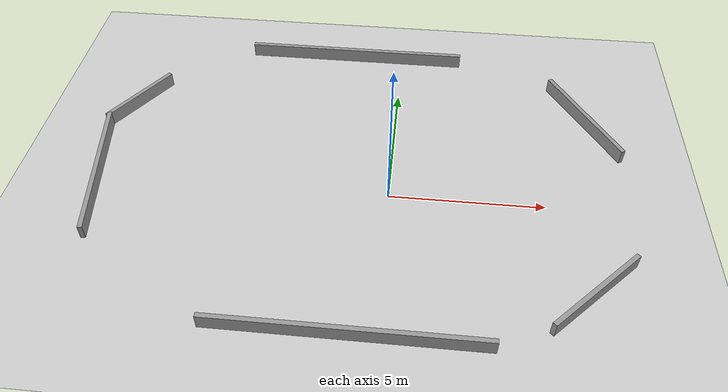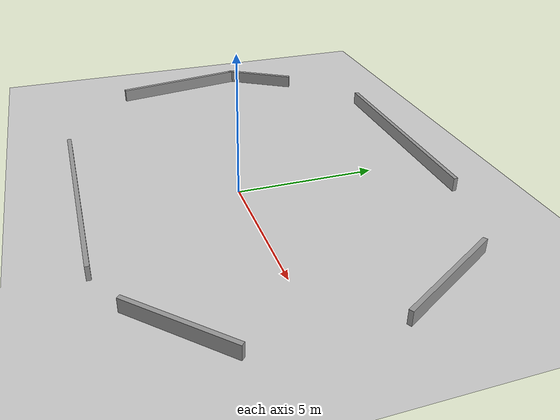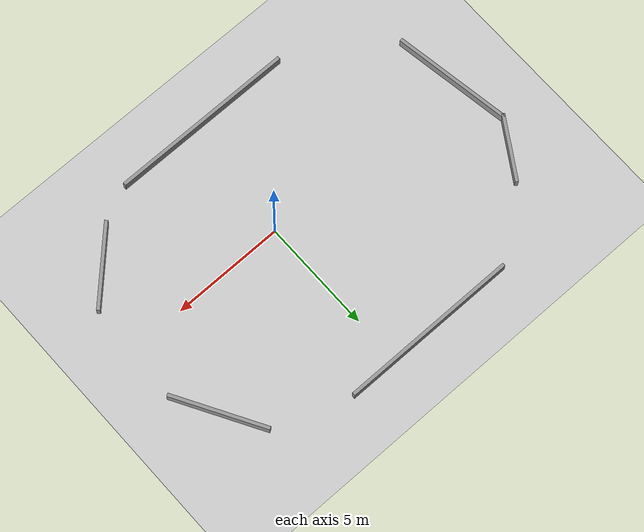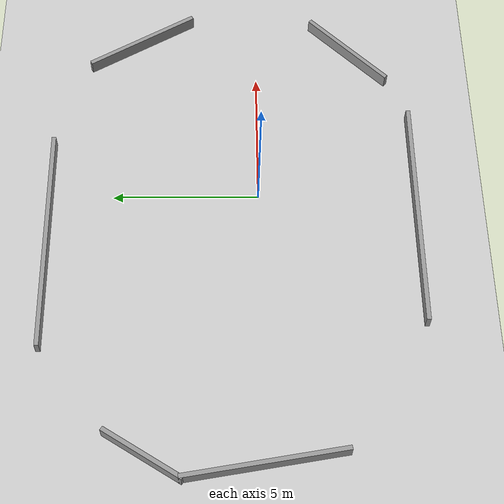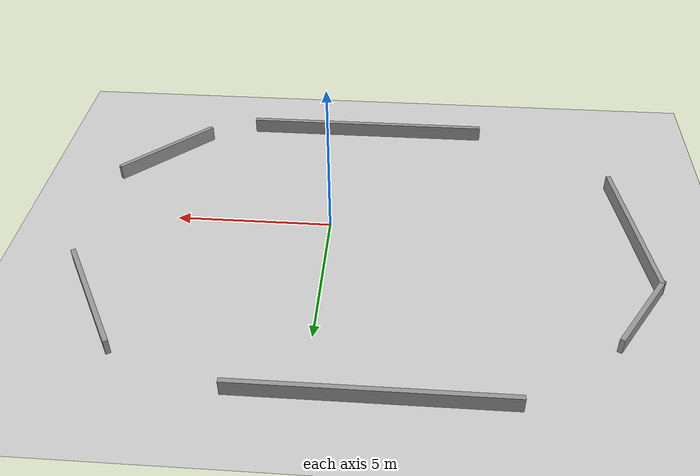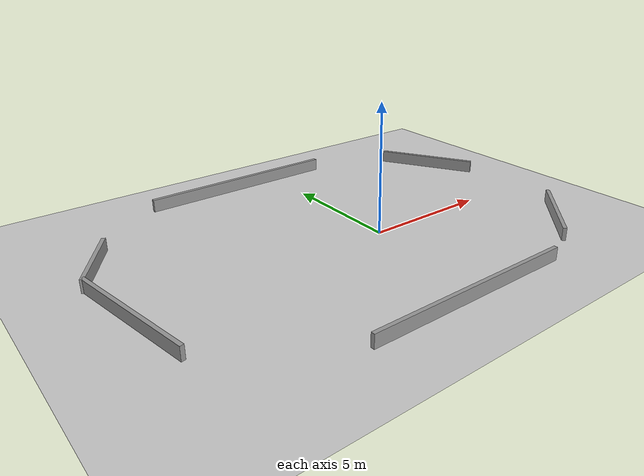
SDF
<sdf version="1.6">
 <world name="default">
  <light name="sun" type="directional">
   <pose>0 0 10 0 -0 0</pose>
   <diffuse>0.8 0.8 0.8 1</diffuse>
   <specular>0.2 0.2 0.2 1</specular>
   <attenuation>
    <range>1000</range>
    <constant>0.9</constant>
    <linear>0.01</linear>
    <quadratic>0.001</quadratic>
   </attenuation>
   <direction>-0.5 0.1 -0.9</direction>
  </light>
  <model name="ground_plane">
   <static>1</static>
   <link name="link">
    <collision name="collision">
     <geometry><plane><normal>0 0 1</normal><size>100 100</size></plane></geometry>
     <surface>
      <contact><collide_bitmask>65535</collide_bitmask></contact>
      <friction><ode><mu>100</mu><mu2>50</mu2></ode></friction>
     </surface>
    </collision>
    <visual name="visual">
     <cast_shadows>0</cast_shadows>
     <geometry><plane><normal>0 0 1</normal><size>100 100</size></plane></geometry>
     <material>
      <script><uri>file://media/materials/scripts/gazebo.material</uri><name>Gazebo/Grey</name></script>
     </material>
    </visual>
   </link>
  </model>
  <gravity>0 0 -9.8</gravity>
  <magnetic_field>6e-06 2.3e-05 -4.2e-05</magnetic_field>
  <atmosphere type="adiabatic"/>
  <physics name="default_physics" default="0" type="ode">
   <max_step_size>0.001</max_step_size>
   <real_time_factor>1</real_time_factor>
   <real_time_update_rate>1000</real_time_update_rate>
  </physics>
  <scene><ambient>0.4 0.4 0.4 1</ambient><background>0.7 0.7 0.7 1</background><shadows>1</shadows></scene>
  <audio><device>default</device></audio>
  <spherical_coordinates>
   <surface_model>EARTH_WGS84</surface_model>
   <latitude_deg>0</latitude_deg>
   <longitude_deg>0</longitude_deg>
   <elevation>0</elevation>
   <heading_deg>0</heading_deg>
  </spherical_coordinates>
  <model name="Untitled">
   <pose>-1.22344 0.890305 0 0 -0 0</pose>
   <link name="Wall_0">
    <collision name="Wall_0_Collision">
     <geometry><box><size>2.96409 0.15 0.5</size></box></geometry>
     <pose>0 0 0.25 0 -0 0</pose>
    </collision>
    <visual name="Wall_0_Visual">
     <pose>0 0 0.25 0 -0 0</pose>
     <geometry><box><size>2.96409 0.15 0.5</size></box></geometry>
     <material>
      <script><uri>file://media/materials/scripts/gazebo.material</uri><name>Gazebo/Grey</name></script>
      <ambient>1 1 1 1</ambient>
     </material>
     <meta><layer>0</layer></meta>
    </visual>
    <pose>-8.10757 2.81697 0 0 -0 -2.13252</pose>
   </link>
   <link name="Wall_1">
    <collision name="Wall_1_Collision">
     <geometry><box><size>5.33618 0.15 0.5</size></box></geometry>
     <pose>0 0 0.25 0 -0 0</pose>
    </collision>
    <visual name="Wall_1_Visual">
     <pose>0 0 0.25 0 -0 0</pose>
     <geometry><box><size>5.33618 0.15 0.5</size></box></geometry>
     <material>
      <script><uri>file://media/materials/scripts/gazebo.material</uri><name>Gazebo/Grey</name></script>
      <ambient>1 1 1 1</ambient>
     </material>
     <meta><layer>0</layer></meta>
    </visual>
    <pose>-8.40856 -0.933059 0 0 -0 -1.40894</pose>
   </link>
   <link name="Wall_10">
    <collision name="Wall_10_Collision">
     <geometry><box><size>3.74988 0.15 0.5</size></box></geometry>
     <pose>0 0 0.25 0 -0 0</pose>
    </collision>
    <visual name="Wall_10_Visual">
     <pose>0 0 0.25 0 -0 0</pose>
     <geometry><box><size>3.74988 0.15 0.5</size></box></geometry>
     <material>
      <script><uri>file://media/materials/scripts/gazebo.material</uri><name>Gazebo/Grey</name></script>
      <ambient>1 1 1 1</ambient>
     </material>
     <meta><layer>0</layer></meta>
    </visual>
    <pose>7.3711 -4.27076 0 0 -0 -2.356</pose>
   </link>
   <link name="Wall_4">
    <collision name="Wall_4_Collision">
     <geometry><box><size>8 0.15 0.5</size></box></geometry>
     <pose>0 0 0.25 0 -0 0</pose>
    </collision>
    <visual name="Wall_4_Visual">
     <pose>0 0 0.25 0 -0 0</pose>
     <geometry><box><size>8 0.15 0.5</size></box></geometry>
     <material>
      <script><uri>file://media/materials/scripts/gazebo.material</uri><name>Gazebo/Grey</name></script>
      <ambient>1 1 1 1</ambient>
     </material>
     <meta><layer>0</layer></meta>
    </visual>
    <pose>-0.554372 6.27113 0 0 -0 0</pose>
   </link>
   <link name="Wall_6">
    <collision name="Wall_6_Collision">
     <geometry><box><size>4.25026 0.15 0.5</size></box></geometry>
     <pose>0 0 0.25 0 -0 0</pose>
    </collision>
    <visual name="Wall_6_Visual">
     <pose>0 0 0.25 0 -0 0</pose>
     <geometry><box><size>4.25026 0.15 0.5</size></box></geometry>
     <material>
      <script><uri>file://media/materials/scripts/gazebo.material</uri><name>Gazebo/Grey</name></script>
      <ambient>1 1 1 1</ambient>
     </material>
     <meta><layer>0</layer></meta>
    </visual>
    <pose>7.83301 3.30265 0 0 -0 -1.04723</pose>
   </link>
   <link name="Wall_8">
    <collision name="Wall_8_Collision">
     <geometry><box><size>8.25 0.15 0.5</size></box></geometry>
     <pose>0 0 0.25 0 -0 0</pose>
    </collision>
    <visual name="Wall_8_Visual">
     <pose>0 0 0.25 0 -0 0</pose>
     <geometry><box><size>8.25 0.15 0.5</size></box></geometry>
     <material>
      <script><uri>file://media/materials/scripts/gazebo.material</uri><name>Gazebo/Grey</name></script>
      <ambient>1 1 1 1</ambient>
     </material>
     <meta><layer>0</layer></meta>
    </visual>
    <pose>0.40267 -6.27113 0 0 -0 3.14159</pose>
   </link>
   <static>1</static>
  </model>
 </world>
</sdf>
